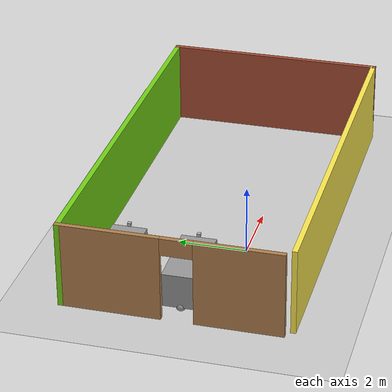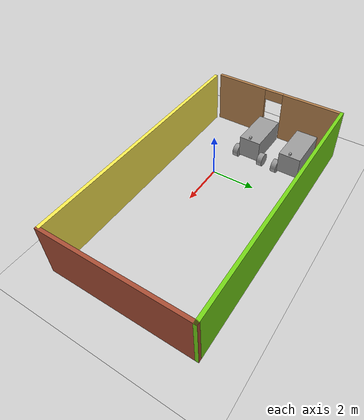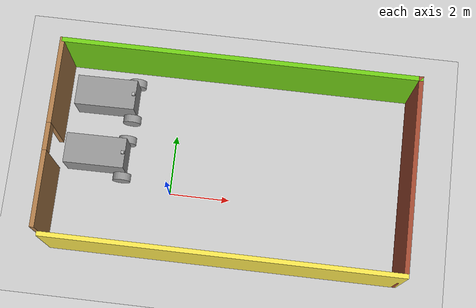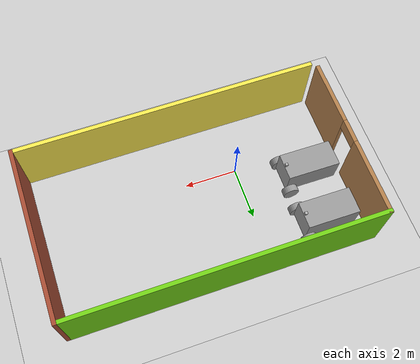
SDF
<sdf version="1.6">
 <world name="default">
  <plugin name="hello_world" filename="libhello_world.so"/>
  <light name="sun" type="directional">
   <pose>0 0 10 0 -0 0</pose>
   <diffuse>0.8 0.8 0.8 1</diffuse>
   <specular>0.2 0.2 0.2 1</specular>
   <attenuation>
    <range>1000</range>
    <constant>0.9</constant>
    <linear>0.01</linear>
    <quadratic>0.001</quadratic>
   </attenuation>
   <direction>-0.5 0.1 -0.9</direction>
  </light>
  <model name="ground_plane">
   <static>1</static>
   <link name="link">
    <collision name="collision">
     <geometry><plane><normal>0 0 1</normal><size>100 100</size></plane></geometry>
     <surface>
      <contact><collide_bitmask>65535</collide_bitmask></contact>
      <friction><ode><mu>100</mu><mu2>50</mu2></ode></friction>
     </surface>
    </collision>
    <visual name="visual">
     <cast_shadows>0</cast_shadows>
     <geometry><plane><normal>0 0 1</normal><size>100 100</size></plane></geometry>
     <material>
      <script><uri>file://media/materials/scripts/gazebo.material</uri><name>Gazebo/Grey</name></script>
     </material>
    </visual>
   </link>
  </model>
  <gravity>0 0 -9.8</gravity>
  <magnetic_field>6e-06 2.3e-05 -4.2e-05</magnetic_field>
  <atmosphere type="adiabatic"/>
  <physics name="default_physics" default="0" type="ode">
   <max_step_size>0.001</max_step_size>
   <real_time_factor>1</real_time_factor>
   <real_time_update_rate>1000</real_time_update_rate>
  </physics>
  <scene><ambient>0.4 0.4 0.4 1</ambient><background>0.7 0.7 0.7 1</background><shadows>1</shadows></scene>
  <audio><device>default</device></audio>
  <spherical_coordinates>
   <surface_model>EARTH_WGS84</surface_model>
   <latitude_deg>0</latitude_deg>
   <longitude_deg>0</longitude_deg>
   <elevation>0</elevation>
   <heading_deg>0</heading_deg>
  </spherical_coordinates>
  <model name="building">
   <pose>1.91357 1.00166 0 0 -0 0</pose>
   <link name="Wall_0">
    <collision name="Wall_0_Collision">
     <geometry><box><size>11.5 0.15 2.5</size></box></geometry>
     <pose>0 0 1.25 0 -0 0</pose>
    </collision>
    <visual name="Wall_0_Visual">
     <pose>0 0 1.25 0 -0 0</pose>
     <geometry><box><size>11.5 0.15 2.5</size></box></geometry>
     <material>
      <script><uri>file://media/materials/scripts/gazebo.material</uri><name>Gazebo/Grey</name></script>
      <ambient>0.988235 0.913725 0.309804 1</ambient>
     </material>
     <meta><layer>0</layer></meta>
    </visual>
    <pose>0.125 -3.175 0 0 -0 0</pose>
   </link>
   <link name="Wall_1">
    <collision name="Wall_1_Collision">
     <geometry><box><size>6.5 0.15 2.5</size></box></geometry>
     <pose>0 0 1.25 0 -0 0</pose>
    </collision>
    <visual name="Wall_1_Visual">
     <pose>0 0 1.25 0 -0 0</pose>
     <geometry><box><size>6.5 0.15 2.5</size></box></geometry>
     <material>
      <script><uri>file://media/materials/scripts/gazebo.material</uri><name>Gazebo/Bricks</name></script>
      <ambient>1 1 1 1</ambient>
     </material>
     <meta><layer>0</layer></meta>
    </visual>
    <pose>5.8 0 0 0 -0 1.5708</pose>
   </link>
   <link name="Wall_2">
    <collision name="Wall_2_Collision">
     <geometry><box><size>11.75 0.15 2.5</size></box></geometry>
     <pose>0 0 1.25 0 -0 0</pose>
    </collision>
    <visual name="Wall_2_Visual">
     <pose>0 0 1.25 0 -0 0</pose>
     <geometry><box><size>11.75 0.15 2.5</size></box></geometry>
     <material>
      <script><uri>file://media/materials/scripts/gazebo.material</uri><name>Gazebo/Grey</name></script>
      <ambient>0.45098 0.823529 0.0862745 1</ambient>
     </material>
     <meta><layer>0</layer></meta>
    </visual>
    <pose>-0 3.175 0 0 -0 3.14159</pose>
   </link>
   <link name="Wall_3">
    <pose>-5.8 0.125 0 0 -0 -1.5708</pose>
    <visual name="Wall_3_Visual_0">
     <pose>-1.68537 0 1.25 0 -0 0</pose>
     <geometry><box><size>2.87927 0.15 2.5</size></box></geometry>
     <material>
      <script><uri>file://media/materials/scripts/gazebo.material</uri><name>Gazebo/Wood</name></script>
      <ambient>1 1 1 1</ambient>
     </material>
     <meta><layer>0</layer></meta>
    </visual>
    <collision name="Wall_3_Collision_0">
     <geometry><box><size>2.87927 0.15 2.5</size></box></geometry>
     <pose>-1.68537 0 1.25 0 -0 0</pose>
    </collision>
    <visual name="Wall_3_Visual_1">
     <pose>1.88963 0 1.25 0 -0 0</pose>
     <geometry><box><size>2.47073 0.15 2.5</size></box></geometry>
     <material>
      <script><uri>file://media/materials/scripts/gazebo.material</uri><name>Gazebo/Wood</name></script>
      <ambient>1 1 1 1</ambient>
     </material>
     <meta><layer>0</layer></meta>
    </visual>
    <collision name="Wall_3_Collision_1">
     <geometry><box><size>2.47073 0.15 2.5</size></box></geometry>
     <pose>1.88963 0 1.25 0 -0 0</pose>
    </collision>
    <visual name="Wall_3_Visual_2">
     <pose>0.204269 0 2.25 0 -0 0</pose>
     <geometry><box><size>0.9 0.15 0.5</size></box></geometry>
     <material>
      <script><uri>file://media/materials/scripts/gazebo.material</uri><name>Gazebo/Wood</name></script>
      <ambient>1 1 1 1</ambient>
     </material>
     <meta><layer>0</layer></meta>
    </visual>
    <collision name="Wall_3_Collision_2">
     <geometry><box><size>0.9 0.15 0.5</size></box></geometry>
     <pose>0.204269 0 2.25 0 -0 0</pose>
    </collision>
   </link>
   <static>1</static>
  </model>
  <model name="first_vehcile">
   <link name="link">
    <inertial>
     <mass>1</mass>
     <inertia>
      <ixx>0.122564</ixx>
      <ixy>0</ixy>
      <ixz>0</ixz>
      <iyy>0.407773</iyy>
      <iyz>0</iyz>
      <izz>0.472213</izz>
     </inertia>
    </inertial>
    <pose>-0.506092 0.015491 0.2 0 -0 0</pose>
    <visual name="visual">
     <geometry><box><size>2 1 1</size></box></geometry>
     <material>
      <script><name>Gazebo/Grey</name><uri>file://media/materials/scripts/gazebo.material</uri></script>
      <shader type="vertex"><normal_map>__default__</normal_map></shader>
      <ambient>0.3 0.3 0.3 1</ambient>
      <diffuse>0.7 0.7 0.7 1</diffuse>
      <specular>0.01 0.01 0.01 1</specular>
      <emissive>0 0 0 1</emissive>
     </material>
    </visual>
    <collision name="collision">
     <geometry><box><size>2 1 1</size></box></geometry>
     <surface>
      <friction>
       <ode><mu>1</mu><mu2>1</mu2><fdir1>0 0 0</fdir1><slip1>0</slip1><slip2>0</slip2></ode>
       <torsional>
        <coefficient>1</coefficient>
        <patch_radius>0</patch_radius>
        <surface_radius>0</surface_radius>
        <use_patch_radius>1</use_patch_radius>
        <ode><slip>0</slip></ode>
       </torsional>
      </friction>
      <bounce><restitution_coefficient>0</restitution_coefficient><threshold>1e+06</threshold></bounce>
      <contact>
       <collide_without_contact>0</collide_without_contact>
       <collide_without_contact_bitmask>1</collide_without_contact_bitmask>
       <collide_bitmask>1</collide_bitmask>
       <ode>
        <soft_cfm>0</soft_cfm>
        <soft_erp>0.2</soft_erp>
        <kp>1e+13</kp>
        <kd>1</kd>
        <max_vel>0.01</max_vel>
        <min_depth>0</min_depth>
       </ode>
       <bullet>
        <split_impulse>1</split_impulse>
        <split_impulse_penetration_threshold>-0.01</split_impulse_penetration_threshold>
        <soft_cfm>0</soft_cfm>
        <soft_erp>0.2</soft_erp>
        <kp>1e+13</kp>
        <kd>1</kd>
       </bullet>
      </contact>
     </surface>
    </collision>
   </link>
   <link name="link_0">
    <inertial>
     <mass>1</mass>
     <inertia><ixx>0.145833</ixx><ixy>0</ixy><ixz>0</ixz><iyy>0.145833</iyy><iyz>0</iyz><izz>0.125</izz></inertia>
    </inertial>
    <pose>0.38 0.65 -0.2 1.5707 -0 0</pose>
    <visual name="visual">
     <geometry><cylinder><radius>0.3</radius><length>0.25</length></cylinder></geometry>
     <material>
      <lighting>1</lighting>
      <script><uri>file://media/materials/scripts/gazebo.material</uri><name>Gazebo/Grey</name></script>
      <shader type="vertex"><normal_map>__default__</normal_map></shader>
      <ambient>0.3 0.3 0.3 1</ambient>
      <diffuse>0.7 0.7 0.7 1</diffuse>
      <specular>0.01 0.01 0.01 1</specular>
      <emissive>0 0 0 1</emissive>
     </material>
    </visual>
    <collision name="collision">
     <geometry><cylinder><radius>0.3</radius><length>0.25</length></cylinder></geometry>
     <surface>
      <friction>
       <ode><mu>1</mu><mu2>1</mu2><fdir1>0 0 0</fdir1><slip1>0</slip1><slip2>0</slip2></ode>
       <torsional>
        <coefficient>1</coefficient>
        <patch_radius>0</patch_radius>
        <surface_radius>0</surface_radius>
        <use_patch_radius>1</use_patch_radius>
        <ode><slip>0</slip></ode>
       </torsional>
      </friction>
      <bounce><restitution_coefficient>0</restitution_coefficient><threshold>1e+06</threshold></bounce>
      <contact>
       <collide_without_contact>0</collide_without_contact>
       <collide_without_contact_bitmask>1</collide_without_contact_bitmask>
       <collide_bitmask>1</collide_bitmask>
       <ode>
        <soft_cfm>0</soft_cfm>
        <soft_erp>0.2</soft_erp>
        <kp>1e+13</kp>
        <kd>1</kd>
        <max_vel>0.01</max_vel>
        <min_depth>0</min_depth>
       </ode>
       <bullet>
        <split_impulse>1</split_impulse>
        <split_impulse_penetration_threshold>-0.01</split_impulse_penetration_threshold>
        <soft_cfm>0</soft_cfm>
        <soft_erp>0.2</soft_erp>
        <kp>1e+13</kp>
        <kd>1</kd>
       </bullet>
      </contact>
     </surface>
    </collision>
   </link>
   <link name="link_0_clone">
    <inertial>
     <mass>1</mass>
     <inertia><ixx>0.145833</ixx><ixy>0</ixy><ixz>0</ixz><iyy>0.145833</iyy><iyz>0</iyz><izz>0.125</izz></inertia>
    </inertial>
    <pose>0.357708 -0.62 -0.2 1.5707 -0 0</pose>
    <visual name="visual">
     <geometry><cylinder><radius>0.3</radius><length>0.25</length></cylinder></geometry>
     <material>
      <lighting>1</lighting>
      <script><uri>file://media/materials/scripts/gazebo.material</uri><name>Gazebo/Grey</name></script>
      <shader type="vertex"><normal_map>__default__</normal_map></shader>
      <ambient>0.3 0.3 0.3 1</ambient>
      <diffuse>0.7 0.7 0.7 1</diffuse>
      <specular>0.01 0.01 0.01 1</specular>
      <emissive>0 0 0 1</emissive>
     </material>
    </visual>
    <collision name="collision">
     <geometry><cylinder><radius>0.3</radius><length>0.25</length></cylinder></geometry>
     <surface>
      <friction>
       <ode><mu>1</mu><mu2>1</mu2><fdir1>0 0 0</fdir1><slip1>0</slip1><slip2>0</slip2></ode>
       <torsional>
        <coefficient>1</coefficient>
        <patch_radius>0</patch_radius>
        <surface_radius>0</surface_radius>
        <use_patch_radius>1</use_patch_radius>
        <ode><slip>0</slip></ode>
       </torsional>
      </friction>
      <bounce><restitution_coefficient>0</restitution_coefficient><threshold>1e+06</threshold></bounce>
      <contact>
       <collide_without_contact>0</collide_without_contact>
       <collide_without_contact_bitmask>1</collide_without_contact_bitmask>
       <collide_bitmask>1</collide_bitmask>
       <ode>
        <soft_cfm>0</soft_cfm>
        <soft_erp>0.2</soft_erp>
        <kp>1e+13</kp>
        <kd>1</kd>
        <max_vel>0.01</max_vel>
        <min_depth>0</min_depth>
       </ode>
       <bullet>
        <split_impulse>1</split_impulse>
        <split_impulse_penetration_threshold>-0.01</split_impulse_penetration_threshold>
        <soft_cfm>0</soft_cfm>
        <soft_erp>0.2</soft_erp>
        <kp>1e+13</kp>
        <kd>1</kd>
       </bullet>
      </contact>
     </surface>
    </collision>
   </link>
   <link name="link_1">
    <inertial>
     <mass>1</mass>
     <inertia><ixx>0.1</ixx><ixy>0</ixy><ixz>0</ixz><iyy>0.1</iyy><iyz>0</iyz><izz>0.1</izz></inertia>
    </inertial>
    <pose>-1.39104 0.018049 -0.3 0 -0 0</pose>
    <visual name="visual">
     <geometry><sphere><radius>0.15</radius></sphere></geometry>
     <material>
      <lighting>1</lighting>
      <script><uri>file://media/materials/scripts/gazebo.material</uri><name>Gazebo/Grey</name></script>
      <shader type="vertex"><normal_map>__default__</normal_map></shader>
      <ambient>0.3 0.3 0.3 1</ambient>
      <diffuse>0.7 0.7 0.7 1</diffuse>
      <specular>0.01 0.01 0.01 1</specular>
      <emissive>0 0 0 1</emissive>
     </material>
    </visual>
    <collision name="collision">
     <geometry><sphere><radius>0.15</radius></sphere></geometry>
     <surface>
      <friction>
       <ode><mu>1</mu><mu2>1</mu2><fdir1>0 0 0</fdir1><slip1>0</slip1><slip2>0</slip2></ode>
       <torsional>
        <coefficient>1</coefficient>
        <patch_radius>0</patch_radius>
        <surface_radius>0</surface_radius>
        <use_patch_radius>1</use_patch_radius>
        <ode><slip>0</slip></ode>
       </torsional>
      </friction>
      <bounce><restitution_coefficient>0</restitution_coefficient><threshold>1e+06</threshold></bounce>
      <contact>
       <collide_without_contact>0</collide_without_contact>
       <collide_without_contact_bitmask>1</collide_without_contact_bitmask>
       <collide_bitmask>1</collide_bitmask>
       <ode>
        <soft_cfm>0</soft_cfm>
        <soft_erp>0.2</soft_erp>
        <kp>1e+13</kp>
        <kd>1</kd>
        <max_vel>0.01</max_vel>
        <min_depth>0</min_depth>
       </ode>
       <bullet>
        <split_impulse>1</split_impulse>
        <split_impulse_penetration_threshold>-0.01</split_impulse_penetration_threshold>
        <soft_cfm>0</soft_cfm>
        <soft_erp>0.2</soft_erp>
        <kp>1e+13</kp>
        <kd>1</kd>
       </bullet>
      </contact>
     </surface>
    </collision>
   </link>
   <model name="camera">
    <pose>0.434372 0.004872 0.816972 0 -0 0</pose>
    <link name="link">
     <inertial>
      <mass>0.1</mass>
      <inertia>
       <ixx>0.000166667</ixx>
       <iyy>0.000166667</iyy>
       <izz>0.000166667</izz>
       <ixy>0</ixy>
       <ixz>0</ixz>
       <iyz>0</iyz>
      </inertia>
     </inertial>
     <collision name="collision"><geometry><box><size>0.1 0.1 0.1</size></box></geometry></collision>
     <visual name="visual"><geometry><box><size>0.1 0.1 0.1</size></box></geometry></visual>
     <sensor name="camera" type="camera">
      <camera name="__default__">
       <horizontal_fov>1.047</horizontal_fov>
       <image><width>320</width><height>240</height></image>
       <clip><near>0.1</near><far>100</far></clip>
      </camera>
      <always_on>1</always_on>
      <update_rate>30</update_rate>
      <visualize>1</visualize>
     </sensor>
    </link>
   </model>
   <joint name="link_JOINT_0" type="revolute">
    <parent>link</parent>
    <child>link_0</child>
    <axis>
     <xyz>1 0 0</xyz>
     <use_parent_model_frame>0</use_parent_model_frame>
     <limit>
      <lower>-1.79769e+308</lower>
      <upper>1.79769e+308</upper>
      <effort>-1</effort>
      <velocity>-1</velocity>
     </limit>
     <dynamics>
      <spring_reference>0</spring_reference>
      <spring_stiffness>0</spring_stiffness>
      <damping>0</damping>
     </dynamics>
    </axis>
    <physics>
     <ode><limit><cfm>0</cfm><erp>0.2</erp></limit><suspension><cfm>0</cfm><erp>0.2</erp></suspension></ode>
    </physics>
   </joint>
   <joint name="link_JOINT_2" type="revolute">
    <parent>link</parent>
    <child>link_0_clone</child>
    <axis>
     <xyz>1 0 0</xyz>
     <use_parent_model_frame>0</use_parent_model_frame>
     <limit>
      <lower>-1.79769e+308</lower>
      <upper>1.79769e+308</upper>
      <effort>-1</effort>
      <velocity>-1</velocity>
     </limit>
     <dynamics>
      <spring_reference>0</spring_reference>
      <spring_stiffness>0</spring_stiffness>
      <damping>0</damping>
     </dynamics>
    </axis>
    <physics>
     <ode><limit><cfm>0</cfm><erp>0.2</erp></limit><suspension><cfm>0</cfm><erp>0.2</erp></suspension></ode>
    </physics>
   </joint>
   <joint name="link_JOINT_3" type="ball">
    <parent>link</parent>
    <child>link_1</child>
    <physics>
     <ode><limit><cfm>0</cfm><erp>0.2</erp></limit><suspension><cfm>0</cfm><erp>0.2</erp></suspension></ode>
    </physics>
   </joint>
   <joint name="link_JOINT_7" type="revolute">
    <parent>link</parent>
    <child>camera::link</child>
    <axis>
     <xyz>1 0 0</xyz>
     <use_parent_model_frame>0</use_parent_model_frame>
     <limit>
      <lower>-1.79769e+308</lower>
      <upper>1.79769e+308</upper>
      <effort>-1</effort>
      <velocity>-1</velocity>
     </limit>
     <dynamics>
      <spring_reference>0</spring_reference>
      <spring_stiffness>0</spring_stiffness>
      <damping>0</damping>
     </dynamics>
    </axis>
    <physics>
     <ode><limit><cfm>0</cfm><erp>0.2</erp></limit><suspension><cfm>0</cfm><erp>0.2</erp></suspension></ode>
    </physics>
   </joint>
   <static>0</static>
   <plugin name="follower" filename="libFollowerPlugin.so"/>
   <pose>-2.00575 0.944187 0.489439 -0.000499 -0.028437 0.001024</pose>
  </model>
  <model name="first_vehcile_0">
   <link name="link">
    <inertial>
     <mass>1</mass>
     <inertia>
      <ixx>0.122564</ixx>
      <ixy>0</ixy>
      <ixz>0</ixz>
      <iyy>0.407773</iyy>
      <iyz>0</iyz>
      <izz>0.472213</izz>
     </inertia>
    </inertial>
    <pose>-0.506092 0.015491 0.2 0 -0 0</pose>
    <visual name="visual">
     <geometry><box><size>2 1 1</size></box></geometry>
     <material>
      <script><name>Gazebo/Grey</name><uri>file://media/materials/scripts/gazebo.material</uri></script>
      <shader type="vertex"><normal_map>__default__</normal_map></shader>
      <ambient>0.3 0.3 0.3 1</ambient>
      <diffuse>0.7 0.7 0.7 1</diffuse>
      <specular>0.01 0.01 0.01 1</specular>
      <emissive>0 0 0 1</emissive>
     </material>
    </visual>
    <collision name="collision">
     <geometry><box><size>2 1 1</size></box></geometry>
     <surface>
      <friction>
       <ode><mu>1</mu><mu2>1</mu2><fdir1>0 0 0</fdir1><slip1>0</slip1><slip2>0</slip2></ode>
       <torsional>
        <coefficient>1</coefficient>
        <patch_radius>0</patch_radius>
        <surface_radius>0</surface_radius>
        <use_patch_radius>1</use_patch_radius>
        <ode><slip>0</slip></ode>
       </torsional>
      </friction>
      <bounce><restitution_coefficient>0</restitution_coefficient><threshold>1e+06</threshold></bounce>
      <contact>
       <collide_without_contact>0</collide_without_contact>
       <collide_without_contact_bitmask>1</collide_without_contact_bitmask>
       <collide_bitmask>1</collide_bitmask>
       <ode>
        <soft_cfm>0</soft_cfm>
        <soft_erp>0.2</soft_erp>
        <kp>1e+13</kp>
        <kd>1</kd>
        <max_vel>0.01</max_vel>
        <min_depth>0</min_depth>
       </ode>
       <bullet>
        <split_impulse>1</split_impulse>
        <split_impulse_penetration_threshold>-0.01</split_impulse_penetration_threshold>
        <soft_cfm>0</soft_cfm>
        <soft_erp>0.2</soft_erp>
        <kp>1e+13</kp>
        <kd>1</kd>
       </bullet>
      </contact>
     </surface>
    </collision>
   </link>
   <link name="link_0">
    <inertial>
     <mass>1</mass>
     <inertia><ixx>0.145833</ixx><ixy>0</ixy><ixz>0</ixz><iyy>0.145833</iyy><iyz>0</iyz><izz>0.125</izz></inertia>
    </inertial>
    <pose>0.38 0.65 -0.2 1.5707 -0 0</pose>
    <visual name="visual">
     <geometry><cylinder><radius>0.3</radius><length>0.25</length></cylinder></geometry>
     <material>
      <lighting>1</lighting>
      <script><uri>file://media/materials/scripts/gazebo.material</uri><name>Gazebo/Grey</name></script>
      <shader type="vertex"><normal_map>__default__</normal_map></shader>
      <ambient>0.3 0.3 0.3 1</ambient>
      <diffuse>0.7 0.7 0.7 1</diffuse>
      <specular>0.01 0.01 0.01 1</specular>
      <emissive>0 0 0 1</emissive>
     </material>
    </visual>
    <collision name="collision">
     <geometry><cylinder><radius>0.3</radius><length>0.25</length></cylinder></geometry>
     <surface>
      <friction>
       <ode><mu>1</mu><mu2>1</mu2><fdir1>0 0 0</fdir1><slip1>0</slip1><slip2>0</slip2></ode>
       <torsional>
        <coefficient>1</coefficient>
        <patch_radius>0</patch_radius>
        <surface_radius>0</surface_radius>
        <use_patch_radius>1</use_patch_radius>
        <ode><slip>0</slip></ode>
       </torsional>
      </friction>
      <bounce><restitution_coefficient>0</restitution_coefficient><threshold>1e+06</threshold></bounce>
      <contact>
       <collide_without_contact>0</collide_without_contact>
       <collide_without_contact_bitmask>1</collide_without_contact_bitmask>
       <collide_bitmask>1</collide_bitmask>
       <ode>
        <soft_cfm>0</soft_cfm>
        <soft_erp>0.2</soft_erp>
        <kp>1e+13</kp>
        <kd>1</kd>
        <max_vel>0.01</max_vel>
        <min_depth>0</min_depth>
       </ode>
       <bullet>
        <split_impulse>1</split_impulse>
        <split_impulse_penetration_threshold>-0.01</split_impulse_penetration_threshold>
        <soft_cfm>0</soft_cfm>
        <soft_erp>0.2</soft_erp>
        <kp>1e+13</kp>
        <kd>1</kd>
       </bullet>
      </contact>
     </surface>
    </collision>
   </link>
   <link name="link_0_clone">
    <inertial>
     <mass>1</mass>
     <inertia><ixx>0.145833</ixx><ixy>0</ixy><ixz>0</ixz><iyy>0.145833</iyy><iyz>0</iyz><izz>0.125</izz></inertia>
    </inertial>
    <pose>0.357708 -0.62 -0.2 1.5707 -0 0</pose>
    <visual name="visual">
     <geometry><cylinder><radius>0.3</radius><length>0.25</length></cylinder></geometry>
     <material>
      <lighting>1</lighting>
      <script><uri>file://media/materials/scripts/gazebo.material</uri><name>Gazebo/Grey</name></script>
      <shader type="vertex"><normal_map>__default__</normal_map></shader>
      <ambient>0.3 0.3 0.3 1</ambient>
      <diffuse>0.7 0.7 0.7 1</diffuse>
      <specular>0.01 0.01 0.01 1</specular>
      <emissive>0 0 0 1</emissive>
     </material>
    </visual>
    <collision name="collision">
     <geometry><cylinder><radius>0.3</radius><length>0.25</length></cylinder></geometry>
     <surface>
      <friction>
       <ode><mu>1</mu><mu2>1</mu2><fdir1>0 0 0</fdir1><slip1>0</slip1><slip2>0</slip2></ode>
       <torsional>
        <coefficient>1</coefficient>
        <patch_radius>0</patch_radius>
        <surface_radius>0</surface_radius>
        <use_patch_radius>1</use_patch_radius>
        <ode><slip>0</slip></ode>
       </torsional>
      </friction>
      <bounce><restitution_coefficient>0</restitution_coefficient><threshold>1e+06</threshold></bounce>
      <contact>
       <collide_without_contact>0</collide_without_contact>
       <collide_without_contact_bitmask>1</collide_without_contact_bitmask>
       <collide_bitmask>1</collide_bitmask>
       <ode>
        <soft_cfm>0</soft_cfm>
        <soft_erp>0.2</soft_erp>
        <kp>1e+13</kp>
        <kd>1</kd>
        <max_vel>0.01</max_vel>
        <min_depth>0</min_depth>
       </ode>
       <bullet>
        <split_impulse>1</split_impulse>
        <split_impulse_penetration_threshold>-0.01</split_impulse_penetration_threshold>
        <soft_cfm>0</soft_cfm>
        <soft_erp>0.2</soft_erp>
        <kp>1e+13</kp>
        <kd>1</kd>
       </bullet>
      </contact>
     </surface>
    </collision>
   </link>
   <link name="link_1">
    <inertial>
     <mass>1</mass>
     <inertia><ixx>0.1</ixx><ixy>0</ixy><ixz>0</ixz><iyy>0.1</iyy><iyz>0</iyz><izz>0.1</izz></inertia>
    </inertial>
    <pose>-1.39104 0.018049 -0.3 0 -0 0</pose>
    <visual name="visual">
     <geometry><sphere><radius>0.15</radius></sphere></geometry>
     <material>
      <lighting>1</lighting>
      <script><uri>file://media/materials/scripts/gazebo.material</uri><name>Gazebo/Grey</name></script>
      <shader type="vertex"><normal_map>__default__</normal_map></shader>
      <ambient>0.3 0.3 0.3 1</ambient>
      <diffuse>0.7 0.7 0.7 1</diffuse>
      <specular>0.01 0.01 0.01 1</specular>
      <emissive>0 0 0 1</emissive>
     </material>
    </visual>
    <collision name="collision">
     <geometry><sphere><radius>0.15</radius></sphere></geometry>
     <surface>
      <friction>
       <ode><mu>1</mu><mu2>1</mu2><fdir1>0 0 0</fdir1><slip1>0</slip1><slip2>0</slip2></ode>
       <torsional>
        <coefficient>1</coefficient>
        <patch_radius>0</patch_radius>
        <surface_radius>0</surface_radius>
        <use_patch_radius>1</use_patch_radius>
        <ode><slip>0</slip></ode>
       </torsional>
      </friction>
      <bounce><restitution_coefficient>0</restitution_coefficient><threshold>1e+06</threshold></bounce>
      <contact>
       <collide_without_contact>0</collide_without_contact>
       <collide_without_contact_bitmask>1</collide_without_contact_bitmask>
       <collide_bitmask>1</collide_bitmask>
       <ode>
        <soft_cfm>0</soft_cfm>
        <soft_erp>0.2</soft_erp>
        <kp>1e+13</kp>
        <kd>1</kd>
        <max_vel>0.01</max_vel>
        <min_depth>0</min_depth>
       </ode>
       <bullet>
        <split_impulse>1</split_impulse>
        <split_impulse_penetration_threshold>-0.01</split_impulse_penetration_threshold>
        <soft_cfm>0</soft_cfm>
        <soft_erp>0.2</soft_erp>
        <kp>1e+13</kp>
        <kd>1</kd>
       </bullet>
      </contact>
     </surface>
    </collision>
   </link>
   <model name="camera">
    <pose>0.434372 0.004872 0.816972 0 -0 0</pose>
    <link name="link">
     <inertial>
      <mass>0.1</mass>
      <inertia>
       <ixx>0.000166667</ixx>
       <iyy>0.000166667</iyy>
       <izz>0.000166667</izz>
       <ixy>0</ixy>
       <ixz>0</ixz>
       <iyz>0</iyz>
      </inertia>
     </inertial>
     <collision name="collision"><geometry><box><size>0.1 0.1 0.1</size></box></geometry></collision>
     <visual name="visual"><geometry><box><size>0.1 0.1 0.1</size></box></geometry></visual>
     <sensor name="camera" type="camera">
      <camera name="__default__">
       <horizontal_fov>1.047</horizontal_fov>
       <image><width>320</width><height>240</height></image>
       <clip><near>0.1</near><far>100</far></clip>
      </camera>
      <always_on>1</always_on>
      <update_rate>30</update_rate>
      <visualize>1</visualize>
     </sensor>
    </link>
   </model>
   <joint name="link_JOINT_0" type="revolute">
    <parent>link</parent>
    <child>link_0</child>
    <axis>
     <xyz>1 0 0</xyz>
     <use_parent_model_frame>0</use_parent_model_frame>
     <limit>
      <lower>-1.79769e+308</lower>
      <upper>1.79769e+308</upper>
      <effort>-1</effort>
      <velocity>-1</velocity>
     </limit>
     <dynamics>
      <spring_reference>0</spring_reference>
      <spring_stiffness>0</spring_stiffness>
      <damping>0</damping>
     </dynamics>
    </axis>
    <physics>
     <ode><limit><cfm>0</cfm><erp>0.2</erp></limit><suspension><cfm>0</cfm><erp>0.2</erp></suspension></ode>
    </physics>
   </joint>
   <joint name="link_JOINT_2" type="revolute">
    <parent>link</parent>
    <child>link_0_clone</child>
    <axis>
     <xyz>1 0 0</xyz>
     <use_parent_model_frame>0</use_parent_model_frame>
     <limit>
      <lower>-1.79769e+308</lower>
      <upper>1.79769e+308</upper>
      <effort>-1</effort>
      <velocity>-1</velocity>
     </limit>
     <dynamics>
      <spring_reference>0</spring_reference>
      <spring_stiffness>0</spring_stiffness>
      <damping>0</damping>
     </dynamics>
    </axis>
    <physics>
     <ode><limit><cfm>0</cfm><erp>0.2</erp></limit><suspension><cfm>0</cfm><erp>0.2</erp></suspension></ode>
    </physics>
   </joint>
   <joint name="link_JOINT_3" type="ball">
    <parent>link</parent>
    <child>link_1</child>
    <physics>
     <ode><limit><cfm>0</cfm><erp>0.2</erp></limit><suspension><cfm>0</cfm><erp>0.2</erp></suspension></ode>
    </physics>
   </joint>
   <joint name="link_JOINT_7" type="revolute">
    <parent>link</parent>
    <child>camera::link</child>
    <axis>
     <xyz>1 0 0</xyz>
     <use_parent_model_frame>0</use_parent_model_frame>
     <limit>
      <lower>-1.79769e+308</lower>
      <upper>1.79769e+308</upper>
      <effort>-1</effort>
      <velocity>-1</velocity>
     </limit>
     <dynamics>
      <spring_reference>0</spring_reference>
      <spring_stiffness>0</spring_stiffness>
      <damping>0</damping>
     </dynamics>
    </axis>
    <physics>
     <ode><limit><cfm>0</cfm><erp>0.2</erp></limit><suspension><cfm>0</cfm><erp>0.2</erp></suspension></ode>
    </physics>
   </joint>
   <static>0</static>
   <plugin name="follower" filename="libFollowerPlugin.so"/>
   <pose>-1.92692 2.95341 0.489439 -0.000499 -0.028437 0.000996</pose>
  </model>
 </world>
</sdf>
